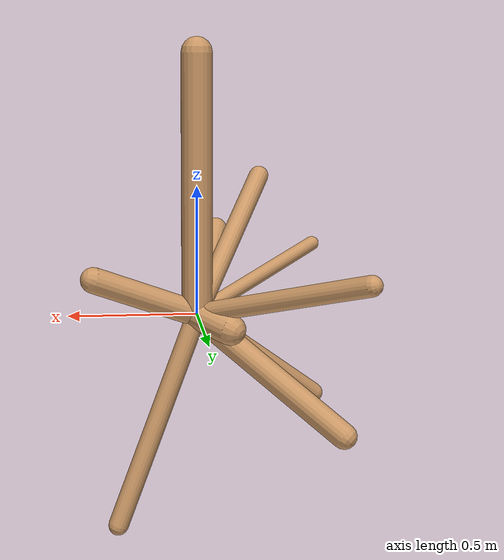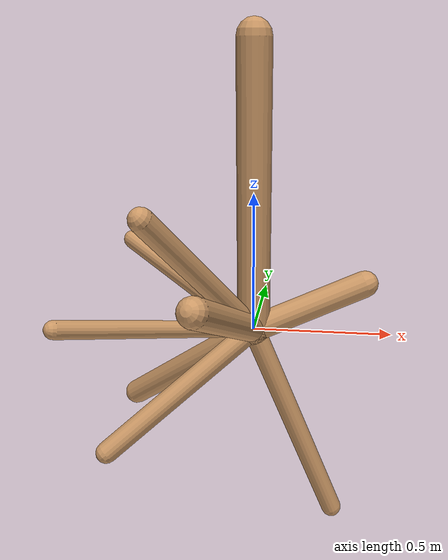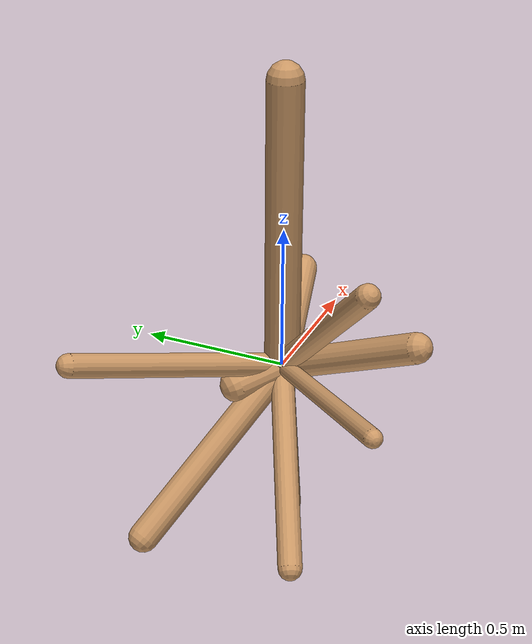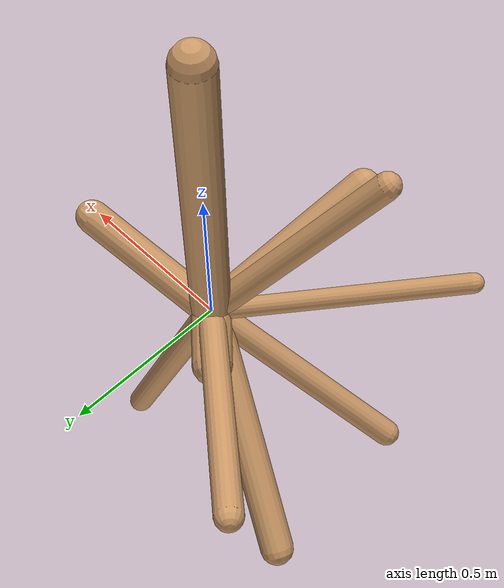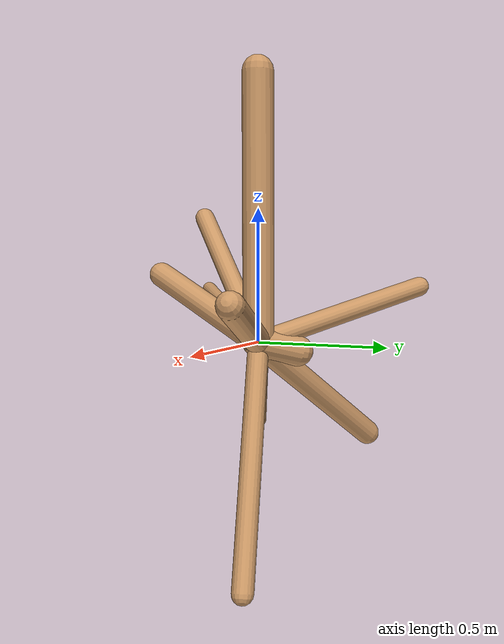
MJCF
<!--
                    joint_number: 9
                    -->
                    <mujoco model="randomrobot">
                        <compiler angle="degree" coordinate="global" inertiafromgeom="true"/>
                        <default>
                        <joint armature="0.01" damping=".1" limited="true"/>
                        <geom conaffinity="0" condim="3" contype="1" density="1000" friction="0.8 .1 .1" rgba="0.8 0.6 .4 1"/>
                        </default>
                        <option integrator="RK4" timestep="0.002"/>
                        <worldbody>
                    <body name='torso' pos='0.00 0.00 0.72'><geom fromto='0 0 0 0.00 0.00 1.00' name='torso_geom' size='0.06' type='capsule'/><inertial mass='0.3'/><body name='L0_D1' pos='0.00 0.00 0.84'><joint axis='0 1 0' name='L0_D1_joint' pos='0 0 0' range='36.84 167.25' type='hinge'/><geom fromto='0 0 0 -0.29 -0.39 0.49' name='L0_D1_geom' size='0.04' type='capsule'/><inertial mass='0.3'/></body><body name='L1_D1' pos='0.00 0.00 0.72'><joint axis='0 1 0' name='L1_D1_joint' pos='0 0 0' range='20.19 74.73' type='hinge'/><geom fromto='0 0 0 0.32 0.09 -0.83' name='L1_D1_geom' size='0.04' type='capsule'/><inertial mass='0.3'/><body name='L2_D0' pos='0.06 0.02 -0.14'><joint axis='0 1 0' name='L2_D0_joint' pos='0 0 0' range='28.09 85.25' type='hinge'/><geom fromto='0 0 0 -0.12 -0.50 0.25' name='L2_D0_geom' size='0.05' type='capsule'/><inertial mass='0.3'/></body><body name='L3_D0' pos='0.04 0.01 -0.11'><joint axis='0 1 0' name='L3_D0_joint' pos='0 0 0' range='47.43 165.19' type='hinge'/><geom fromto='0 0 0 -0.51 -0.25 -0.41' name='L3_D0_geom' size='0.04' type='capsule'/><inertial mass='0.3'/></body><body name='L4_D0' pos='0.16 0.05 -0.41'><joint axis='1 0 0' name='L4_D0_joint' pos='0 0 0' range='38.66 96.83' type='hinge'/><geom fromto='0 0 0 -0.12 0.11 -0.04' name='L4_D0_geom' size='0.06' type='capsule'/><inertial mass='0.3'/></body></body><body name='L5_D1' pos='0.00 0.00 0.54'><joint axis='1 0 0' name='L5_D1_joint' pos='0 0 0' range='60.75 99.33' type='hinge'/><geom fromto='0 0 0 -0.58 0.47 0.20' name='L5_D1_geom' size='0.04' type='capsule'/><inertial mass='0.3'/></body><body name='L6_D1' pos='0.00 0.00 0.66'><joint axis='0 0 1' name='L6_D1_joint' pos='0 0 0' range='66.13 81.65' type='hinge'/><geom fromto='0 0 0 -0.54 -0.51 0.18' name='L6_D1_geom' size='0.03' type='capsule'/><inertial mass='0.3'/><body name='L7_D0' pos='-0.05 -0.05 0.02'><joint axis='0 0 1' name='L7_D0_joint' pos='0 0 0' range='94.07 152.31' type='hinge'/><geom fromto='0 0 0 -0.54 0.26 -0.43' name='L7_D0_geom' size='0.05' type='capsule'/><inertial mass='0.3'/></body><body name='L8_D0' pos='-0.52 -0.48 0.17'><joint axis='1 0 0' name='L8_D0_joint' pos='0 0 0' range='42.89 137.01' type='hinge'/><geom fromto='0 0 0 0.40 0.09 0.16' name='L8_D0_geom' size='0.05' type='capsule'/><inertial mass='0.3'/></body></body></body>
                        </worldbody>
                    </mujoco>
